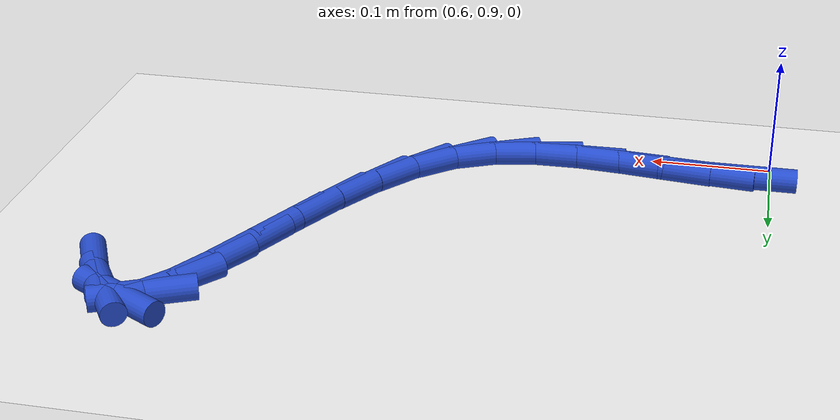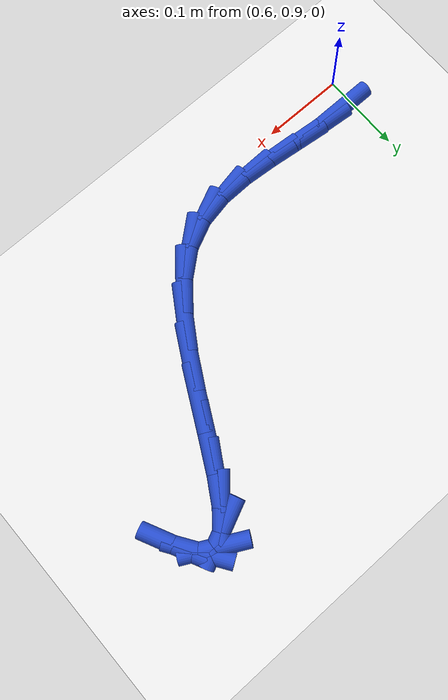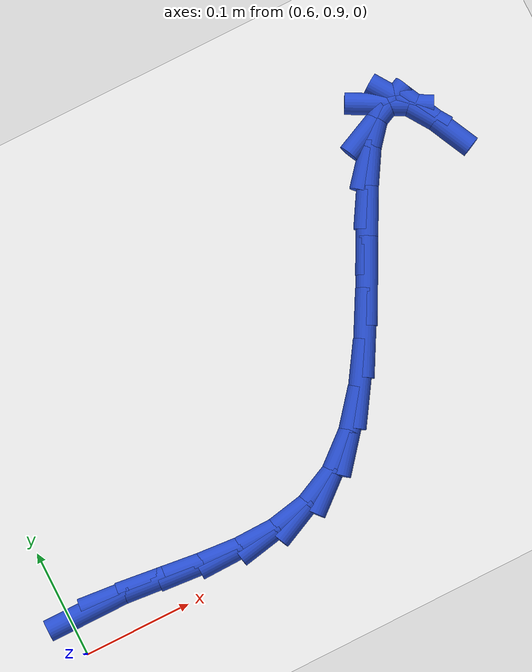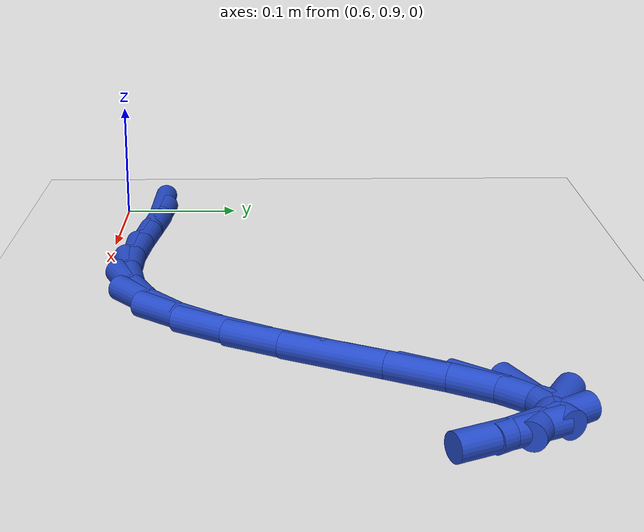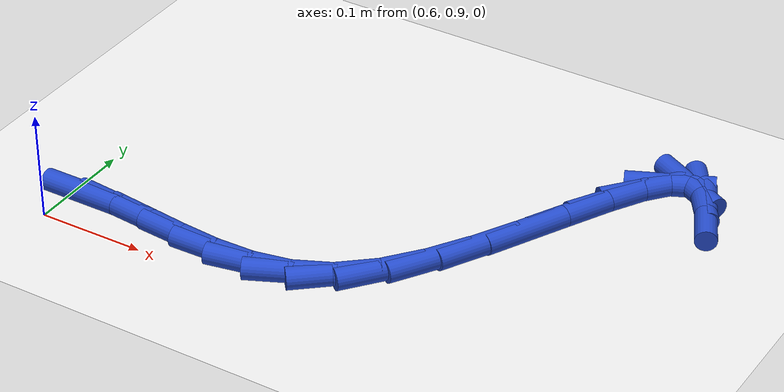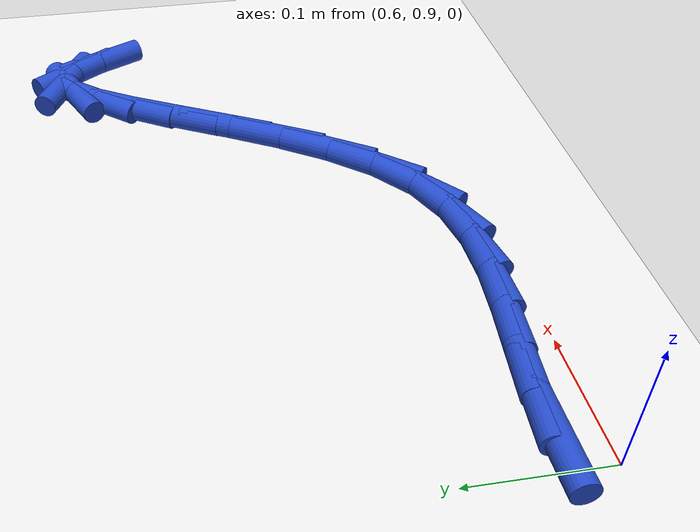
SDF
<sdf version="1.6">
 <world name="default">
  <model name="ground_plane">
   <static>1</static>
   <link name="link">
    <collision name="collision">
     <geometry><plane><normal>0 0 1</normal><size>100 100</size></plane></geometry>
     <surface><friction><ode><mu>100</mu><mu2>50</mu2></ode></friction></surface>
    </collision>
    <visual name="visual">
     <cast_shadows>0</cast_shadows>
     <geometry><plane><normal>0 0 1</normal><size>100 100</size></plane></geometry>
     <material>
      <script><uri>file://media/materials/scripts/gazebo.material</uri><name>Gazebo/WhiteGlow</name></script>
     </material>
    </visual>
   </link>
  </model>
  <model name="line">
   <link name="link_33">
    <pose>0.618468696822709 0.9340127060964651 0.01 0 1.57 0.002265711379368067</pose>
    <collision name="collision">
     <geometry><cylinder><radius>0.01</radius><length>0.08</length></cylinder></geometry>
    </collision>
    <visual name="visual">
     <material>
      <script><name>Gazebo/Blue</name><uri>file://media/materials/scripts/gazebo.material</uri></script>
     </material>
     <geometry><cylinder><radius>0.01</radius><length>0.08</length></cylinder></geometry>
    </visual>
   </link>
   <link name="link_34">
    <pose>0.6524264214297649 0.9340896446311782 0.01 0 1.57 -0.09199547964538214</pose>
    <collision name="collision">
     <geometry><cylinder><radius>0.01</radius><length>0.08</length></cylinder></geometry>
    </collision>
    <visual name="visual">
     <material>
      <script><name>Gazebo/Blue</name><uri>file://media/materials/scripts/gazebo.material</uri></script>
     </material>
     <geometry><cylinder><radius>0.01</radius><length>0.08</length></cylinder></geometry>
    </visual>
   </link>
   <link name="link_35">
    <pose>0.6881998456381658 0.9307893356987048 0.01 0 1.57 -0.11658881026703487</pose>
    <collision name="collision">
     <geometry><cylinder><radius>0.01</radius><length>0.08</length></cylinder></geometry>
    </collision>
    <visual name="visual">
     <material>
      <script><name>Gazebo/Blue</name><uri>file://media/materials/scripts/gazebo.material</uri></script>
     </material>
     <geometry><cylinder><radius>0.01</radius><length>0.08</length></cylinder></geometry>
    </visual>
   </link>
   <link name="link_36">
    <pose>0.7249848884748822 0.9264810729385159 0.01 0 1.57 -0.07949466341857395</pose>
    <collision name="collision">
     <geometry><cylinder><radius>0.01</radius><length>0.08</length></cylinder></geometry>
    </collision>
    <visual name="visual">
     <material>
      <script><name>Gazebo/Blue</name><uri>file://media/materials/scripts/gazebo.material</uri></script>
     </material>
     <geometry><cylinder><radius>0.01</radius><length>0.08</length></cylinder></geometry>
    </visual>
   </link>
   <link name="link_37">
    <pose>0.7619774689668835 0.9235341499900798 0.01 0 1.57 0.02152952549953946</pose>
    <collision name="collision">
     <geometry><cylinder><radius>0.01</radius><length>0.08</length></cylinder></geometry>
    </collision>
    <visual name="visual">
     <material>
      <script><name>Gazebo/Blue</name><uri>file://media/materials/scripts/gazebo.material</uri></script>
     </material>
     <geometry><cylinder><radius>0.01</radius><length>0.08</length></cylinder></geometry>
    </visual>
   </link>
   <link name="link_38">
    <pose>0.798373506141139 0.9243178604928668 0.01 0 1.57 0.19422157574366936</pose>
    <collision name="collision">
     <geometry><cylinder><radius>0.01</radius><length>0.08</length></cylinder></geometry>
    </collision>
    <visual name="visual">
     <material>
      <script><name>Gazebo/Blue</name><uri>file://media/materials/scripts/gazebo.material</uri></script>
     </material>
     <geometry><cylinder><radius>0.01</radius><length>0.08</length></cylinder></geometry>
    </visual>
   </link>
   <link name="link_39">
    <pose>0.8333689190246194 0.9312014980863462 0.01 0 1.57 0.4378917725070002</pose>
    <collision name="collision">
     <geometry><cylinder><radius>0.01</radius><length>0.08</length></cylinder></geometry>
    </collision>
    <visual name="visual">
     <material>
      <script><name>Gazebo/Blue</name><uri>file://media/materials/scripts/gazebo.material</uri></script>
     </material>
     <geometry><cylinder><radius>0.01</radius><length>0.08</length></cylinder></geometry>
    </visual>
   </link>
   <link name="link_40">
    <pose>0.8661596266442937 0.9465543564099878 0.01 0 1.57 0.7033480801861134</pose>
    <collision name="collision">
     <geometry><cylinder><radius>0.01</radius><length>0.08</length></cylinder></geometry>
    </collision>
    <visual name="visual">
     <material>
      <script><name>Gazebo/Blue</name><uri>file://media/materials/scripts/gazebo.material</uri></script>
     </material>
     <geometry><cylinder><radius>0.01</radius><length>0.08</length></cylinder></geometry>
    </visual>
   </link>
   <link name="link_41">
    <pose>0.8961046343801986 0.9719485603083635 0.01 0 1.57 0.8886059507664142</pose>
    <collision name="collision">
     <geometry><cylinder><radius>0.01</radius><length>0.08</length></cylinder></geometry>
    </collision>
    <visual name="visual">
     <material>
      <script><name>Gazebo/Blue</name><uri>file://media/materials/scripts/gazebo.material</uri></script>
     </material>
     <geometry><cylinder><radius>0.01</radius><length>0.08</length></cylinder></geometry>
    </visual>
   </link>
   <link name="link_42">
    <pose>0.9232877596463951 1.0054133413990733 0.01 0 1.57 1.0012127696572173</pose>
    <collision name="collision">
     <geometry><cylinder><radius>0.01</radius><length>0.08</length></cylinder></geometry>
    </collision>
    <visual name="visual">
     <material>
      <script><name>Gazebo/Blue</name><uri>file://media/materials/scripts/gazebo.material</uri></script>
     </material>
     <geometry><cylinder><radius>0.01</radius><length>0.08</length></cylinder></geometry>
    </visual>
   </link>
   <link name="link_43">
    <pose>0.9479941078253828 1.0439940323761654 0.01 0 1.57 1.065945739766662</pose>
    <collision name="collision">
     <geometry><cylinder><radius>0.01</radius><length>0.08</length></cylinder></geometry>
    </collision>
    <visual name="visual">
     <material>
      <script><name>Gazebo/Blue</name><uri>file://media/materials/scripts/gazebo.material</uri></script>
     </material>
     <geometry><cylinder><radius>0.01</radius><length>0.08</length></cylinder></geometry>
    </visual>
   </link>
   <link name="link_44">
    <pose>0.9705087921415044 1.0847359276026345 0.01 0 1.57 1.0945343477757163</pose>
    <collision name="collision">
     <geometry><cylinder><radius>0.01</radius><length>0.08</length></cylinder></geometry>
    </collision>
    <visual name="visual">
     <material>
      <script><name>Gazebo/Blue</name><uri>file://media/materials/scripts/gazebo.material</uri></script>
     </material>
     <geometry><cylinder><radius>0.01</radius><length>0.08</length></cylinder></geometry>
    </visual>
   </link>
   <link name="link_45">
    <pose>0.9911169258191018 1.1246843214414763 0.01 0 1.57 1.087747907198237</pose>
    <collision name="collision">
     <geometry><cylinder><radius>0.01</radius><length>0.08</length></cylinder></geometry>
    </collision>
    <visual name="visual">
     <material>
      <script><name>Gazebo/Blue</name><uri>file://media/materials/scripts/gazebo.material</uri></script>
     </material>
     <geometry><cylinder><radius>0.01</radius><length>0.08</length></cylinder></geometry>
    </visual>
   </link>
   <link name="link_46">
    <pose>1.010103622082517 1.1608845082556851 0.01 0 1.57 1.0315740176226684</pose>
    <collision name="collision">
     <geometry><cylinder><radius>0.01</radius><length>0.08</length></cylinder></geometry>
    </collision>
    <visual name="visual">
     <material>
      <script><name>Gazebo/Blue</name><uri>file://media/materials/scripts/gazebo.material</uri></script>
     </material>
     <geometry><cylinder><radius>0.01</radius><length>0.08</length></cylinder></geometry>
    </visual>
   </link>
   <link name="link_47">
    <pose>1.0277539941560923 1.190381782408256 0.01 0 1.57 0.8740945821807543</pose>
    <collision name="collision">
     <geometry><cylinder><radius>0.01</radius><length>0.08</length></cylinder></geometry>
    </collision>
    <visual name="visual">
     <material>
      <script><name>Gazebo/Blue</name><uri>file://media/materials/scripts/gazebo.material</uri></script>
     </material>
     <geometry><cylinder><radius>0.01</radius><length>0.08</length></cylinder></geometry>
    </visual>
   </link>
   <link name="link_48">
    <pose>1.0443531552641694 1.2102214382621843 0.01 0 1.57 0.4282220409804943</pose>
    <collision name="collision">
     <geometry><cylinder><radius>0.01</radius><length>0.08</length></cylinder></geometry>
    </collision>
    <visual name="visual">
     <material>
      <script><name>Gazebo/Blue</name><uri>file://media/materials/scripts/gazebo.material</uri></script>
     </material>
     <geometry><cylinder><radius>0.01</radius><length>0.08</length></cylinder></geometry>
    </visual>
   </link>
   <link name="link_49">
    <pose>1.0601862186310909 1.217448770180465 0.01 0 1.57 -0.4913779624600538</pose>
    <collision name="collision">
     <geometry><cylinder><radius>0.01</radius><length>0.08</length></cylinder></geometry>
    </collision>
    <visual name="visual">
     <material>
      <script><name>Gazebo/Blue</name><uri>file://media/materials/scripts/gazebo.material</uri></script>
     </material>
     <geometry><cylinder><radius>0.01</radius><length>0.08</length></cylinder></geometry>
    </visual>
   </link>
   <link name="link_50">
    <pose>1.0755437644178132 1.2092300344785571 0.01 0 1.57 -0.9808681145622187</pose>
    <collision name="collision">
     <geometry><cylinder><radius>0.01</radius><length>0.08</length></cylinder></geometry>
    </collision>
    <visual name="visual">
     <material>
      <script><name>Gazebo/Blue</name><uri>file://media/materials/scripts/gazebo.material</uri></script>
     </material>
     <geometry><cylinder><radius>0.01</radius><length>0.08</length></cylinder></geometry>
    </visual>
   </link>
   <link name="link_51">
    <pose>1.0908787071843848 1.1863233136169105 0.01 0 1.57 -1.1172891857659133</pose>
    <collision name="collision">
     <geometry><cylinder><radius>0.01</radius><length>0.08</length></cylinder></geometry>
    </collision>
    <visual name="visual">
     <material>
      <script><name>Gazebo/Blue</name><uri>file://media/materials/scripts/gazebo.material</uri></script>
     </material>
     <geometry><cylinder><radius>0.01</radius><length>0.08</length></cylinder></geometry>
    </visual>
   </link>
  </model>
 </world>
</sdf>
